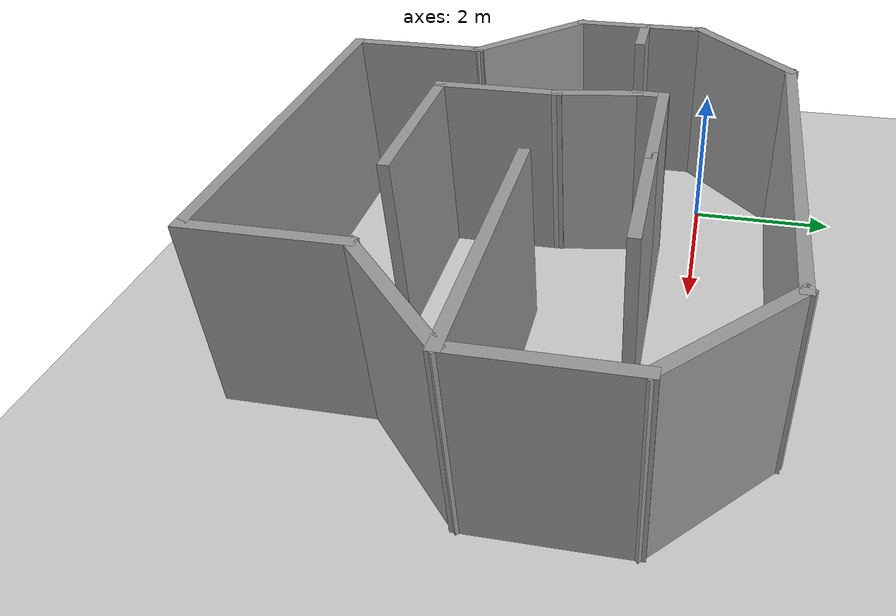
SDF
<sdf version="1.7">
 <world name="default">
  <light name="sun" type="directional">
   <pose>0 0 10 0 -0 0</pose>
   <diffuse>0.8 0.8 0.8 1</diffuse>
   <specular>0.2 0.2 0.2 1</specular>
   <attenuation>
    <range>1000</range>
    <constant>0.9</constant>
    <linear>0.01</linear>
    <quadratic>0.001</quadratic>
   </attenuation>
   <direction>-0.5 0.1 -0.9</direction>
   <spot><inner_angle>0</inner_angle><outer_angle>0</outer_angle><falloff>0</falloff></spot>
  </light>
  <model name="ground_plane">
   <static>1</static>
   <link name="link">
    <collision name="collision">
     <geometry><plane><normal>0 0 1</normal><size>100 100</size></plane></geometry>
     <surface>
      <contact><collide_bitmask>65535</collide_bitmask></contact>
      <friction><ode><mu>100</mu><mu2>50</mu2></ode></friction>
     </surface>
    </collision>
    <visual name="visual">
     <cast_shadows>0</cast_shadows>
     <geometry><plane><normal>0 0 1</normal><size>100 100</size></plane></geometry>
     <material>
      <script><uri>file://media/materials/scripts/gazebo.material</uri><name>Gazebo/Grey</name></script>
     </material>
    </visual>
   </link>
  </model>
  <gravity>0 0 -9.8</gravity>
  <magnetic_field>6e-06 2.3e-05 -4.2e-05</magnetic_field>
  <atmosphere type="adiabatic"/>
  <physics type="ode">
   <max_step_size>0.001</max_step_size>
   <real_time_factor>1</real_time_factor>
   <real_time_update_rate>1000</real_time_update_rate>
  </physics>
  <scene><ambient>0.4 0.4 0.4 1</ambient><background>0.7 0.7 0.7 1</background><shadows>1</shadows></scene>
  <audio><device>default</device></audio>
  <spherical_coordinates>
   <surface_model>EARTH_WGS84</surface_model>
   <latitude_deg>0</latitude_deg>
   <longitude_deg>0</longitude_deg>
   <elevation>0</elevation>
   <heading_deg>0</heading_deg>
  </spherical_coordinates>
  <model name="model">
   <pose>2.38141 -1.67782 0 0 -0 0</pose>
   <link name="Wall_0">
    <collision name="Wall_0_Collision">
     <geometry><box><size>2 0.15 2.5</size></box></geometry>
     <pose>0 0 1.25 0 -0 0</pose>
    </collision>
    <visual name="Wall_0_Visual">
     <pose>0 0 1.25 0 -0 0</pose>
     <geometry><box><size>2 0.15 2.5</size></box></geometry>
     <material>
      <script><uri>file://media/materials/scripts/gazebo.material</uri><name>Gazebo/Grey</name></script>
      <ambient>1 1 1 1</ambient>
     </material>
     <meta><layer>0</layer></meta>
    </visual>
    <pose>-3.73315 0.54706 0 0 -0 -1.5708</pose>
   </link>
   <link name="Wall_1">
    <collision name="Wall_1_Collision">
     <geometry><box><size>2 0.15 2.5</size></box></geometry>
     <pose>0 0 1.25 0 -0 0</pose>
    </collision>
    <visual name="Wall_1_Visual">
     <pose>0 0 1.25 0 -0 0</pose>
     <geometry><box><size>2 0.15 2.5</size></box></geometry>
     <material>
      <script><uri>file://media/materials/scripts/gazebo.material</uri><name>Gazebo/Grey</name></script>
      <ambient>1 1 1 1</ambient>
     </material>
     <meta><layer>0</layer></meta>
    </visual>
    <pose>-3.07907 -1.03201 0 0 -0 -0.785398</pose>
   </link>
   <link name="Wall_14">
    <collision name="Wall_14_Collision">
     <geometry><box><size>0.5 0.15 2.5</size></box></geometry>
     <pose>0 0 1.25 0 -0 0</pose>
    </collision>
    <visual name="Wall_14_Visual">
     <pose>0 0 1.25 0 -0 0</pose>
     <geometry><box><size>0.5 0.15 2.5</size></box></geometry>
     <material>
      <script><uri>file://media/materials/scripts/gazebo.material</uri><name>Gazebo/Grey</name></script>
      <ambient>1 1 1 1</ambient>
     </material>
     <meta><layer>0</layer></meta>
    </visual>
    <pose>-1.38315 0.934061 0 0 -0 1.5708</pose>
   </link>
   <link name="Wall_15">
    <collision name="Wall_15_Collision">
     <geometry><box><size>1.75 0.15 2.5</size></box></geometry>
     <pose>0 0 1.25 0 -0 0</pose>
    </collision>
    <visual name="Wall_15_Visual">
     <pose>0 0 1.25 0 -0 0</pose>
     <geometry><box><size>1.75 0.15 2.5</size></box></geometry>
     <material>
      <script><uri>file://media/materials/scripts/gazebo.material</uri><name>Gazebo/Grey</name></script>
      <ambient>1 1 1 1</ambient>
     </material>
     <meta><layer>0</layer></meta>
    </visual>
    <pose>-0.583147 1.10906 0 0 -0 0</pose>
   </link>
   <link name="Wall_23">
    <collision name="Wall_23_Collision">
     <geometry><box><size>2 0.15 2.5</size></box></geometry>
     <pose>0 0 1.25 0 -0 0</pose>
    </collision>
    <visual name="Wall_23_Visual">
     <pose>0 0 1.25 0 -0 0</pose>
     <geometry><box><size>2 0.15 2.5</size></box></geometry>
     <material>
      <script><uri>file://media/materials/scripts/gazebo.material</uri><name>Gazebo/Grey</name></script>
      <ambient>1 1 1 1</ambient>
     </material>
     <meta><layer>0</layer></meta>
    </visual>
    <pose>-2.425 -2.61109 0 0 -0 -1.5708</pose>
   </link>
   <link name="Wall_24">
    <collision name="Wall_24_Collision">
     <geometry><box><size>5 0.15 2.5</size></box></geometry>
     <pose>0 0 1.25 0 -0 0</pose>
    </collision>
    <visual name="Wall_24_Visual">
     <pose>0 0 1.25 0 -0 0</pose>
     <geometry><box><size>5 0.15 2.5</size></box></geometry>
     <material>
      <script><uri>file://media/materials/scripts/gazebo.material</uri><name>Gazebo/Grey</name></script>
      <ambient>1 1 1 1</ambient>
     </material>
     <meta><layer>0</layer></meta>
    </visual>
    <pose>-0 -3.53609 0 0 -0 0</pose>
   </link>
   <link name="Wall_25">
    <collision name="Wall_25_Collision">
     <geometry><box><size>2 0.15 2.5</size></box></geometry>
     <pose>0 0 1.25 0 -0 0</pose>
    </collision>
    <visual name="Wall_25_Visual">
     <pose>0 0 1.25 0 -0 0</pose>
     <geometry><box><size>2 0.15 2.5</size></box></geometry>
     <material>
      <script><uri>file://media/materials/scripts/gazebo.material</uri><name>Gazebo/Grey</name></script>
      <ambient>1 1 1 1</ambient>
     </material>
     <meta><layer>0</layer></meta>
    </visual>
    <pose>2.425 -2.61109 0 0 -0 1.5708</pose>
   </link>
   <link name="Wall_29">
    <collision name="Wall_29_Collision">
     <geometry><box><size>1.75 0.15 2.5</size></box></geometry>
     <pose>0 0 1.25 0 -0 0</pose>
    </collision>
    <visual name="Wall_29_Visual">
     <pose>0 0 1.25 0 -0 0</pose>
     <geometry><box><size>1.75 0.15 2.5</size></box></geometry>
     <material>
      <script><uri>file://media/materials/scripts/gazebo.material</uri><name>Gazebo/Grey</name></script>
      <ambient>1 1 1 1</ambient>
     </material>
     <meta><layer>0</layer></meta>
    </visual>
    <pose>-1.21221 -1.08869 0 0 -0 -1.5708</pose>
   </link>
   <link name="Wall_3">
    <collision name="Wall_3_Collision">
     <geometry><box><size>2 0.15 2.5</size></box></geometry>
     <pose>0 0 1.25 0 -0 0</pose>
    </collision>
    <visual name="Wall_3_Visual">
     <pose>0 0 1.25 0 -0 0</pose>
     <geometry><box><size>2 0.15 2.5</size></box></geometry>
     <material>
      <script><uri>file://media/materials/scripts/gazebo.material</uri><name>Gazebo/Grey</name></script>
      <ambient>1 1 1 1</ambient>
     </material>
     <meta><layer>0</layer></meta>
    </visual>
    <pose>3.07907 -1.03201 0 0 -0 0.785398</pose>
   </link>
   <link name="Wall_30">
    <collision name="Wall_30_Collision">
     <geometry><box><size>2.25 0.15 2.5</size></box></geometry>
     <pose>0 0 1.25 0 -0 0</pose>
    </collision>
    <visual name="Wall_30_Visual">
     <pose>0 0 1.25 0 -0 0</pose>
     <geometry><box><size>2.25 0.15 2.5</size></box></geometry>
     <material>
      <script><uri>file://media/materials/scripts/gazebo.material</uri><name>Gazebo/Grey</name></script>
      <ambient>1 1 1 1</ambient>
     </material>
     <meta><layer>0</layer></meta>
    </visual>
    <pose>-0.162214 -1.88869 0 0 -0 0</pose>
   </link>
   <link name="Wall_32">
    <collision name="Wall_32_Collision">
     <geometry><box><size>1.2116 0.15 2.5</size></box></geometry>
     <pose>0 0 1.25 0 -0 0</pose>
    </collision>
    <visual name="Wall_32_Visual">
     <pose>0 0 1.25 0 -0 0</pose>
     <geometry><box><size>1.2116 0.15 2.5</size></box></geometry>
     <material>
      <script><uri>file://media/materials/scripts/gazebo.material</uri><name>Gazebo/Grey</name></script>
      <ambient>1 1 1 1</ambient>
     </material>
     <meta><layer>0</layer></meta>
    </visual>
    <pose>-1.29768 0.235187 0 0 -0 -1.40908</pose>
   </link>
   <link name="Wall_34">
    <collision name="Wall_34_Collision">
     <geometry><box><size>1.75 0.15 2.5</size></box></geometry>
     <pose>0 0 1.25 0 -0 0</pose>
    </collision>
    <visual name="Wall_34_Visual">
     <pose>0 0 1.25 0 -0 0</pose>
     <geometry><box><size>1.75 0.15 2.5</size></box></geometry>
     <material>
      <script><uri>file://media/materials/scripts/gazebo.material</uri><name>Gazebo/Grey</name></script>
      <ambient>1 1 1 1</ambient>
     </material>
     <meta><layer>0</layer></meta>
    </visual>
    <pose>1.01685 1.10906 0 0 -0 0</pose>
   </link>
   <link name="Wall_36">
    <collision name="Wall_36_Collision">
     <geometry><box><size>3.5 0.15 2.5</size></box></geometry>
     <pose>0 0 1.25 0 -0 0</pose>
    </collision>
    <visual name="Wall_36_Visual">
     <pose>0 0 1.25 0 -0 0</pose>
     <geometry><box><size>3.5 0.15 2.5</size></box></geometry>
     <material>
      <script><uri>file://media/materials/scripts/gazebo.material</uri><name>Gazebo/Grey</name></script>
      <ambient>1 1 1 1</ambient>
     </material>
     <meta><layer>0</layer></meta>
    </visual>
    <pose>2.05815 -0.377939 0 0 -0 3.14159</pose>
   </link>
   <link name="Wall_39">
    <collision name="Wall_39_Collision">
     <geometry><box><size>0.75 0.15 2.5</size></box></geometry>
     <pose>0 0 1.25 0 -0 0</pose>
    </collision>
    <visual name="Wall_39_Visual">
     <pose>0 0 1.25 0 -0 0</pose>
     <geometry><box><size>0.75 0.15 2.5</size></box></geometry>
     <material>
      <script><uri>file://media/materials/scripts/gazebo.material</uri><name>Gazebo/Grey</name></script>
      <ambient>1 1 1 1</ambient>
     </material>
     <meta><layer>0</layer></meta>
    </visual>
    <pose>-3.37914 0.611458 0 0 -0 0</pose>
   </link>
   <link name="Wall_4">
    <collision name="Wall_4_Collision">
     <geometry><box><size>2 0.15 2.5</size></box></geometry>
     <pose>0 0 1.25 0 -0 0</pose>
    </collision>
    <visual name="Wall_4_Visual">
     <pose>0 0 1.25 0 -0 0</pose>
     <geometry><box><size>2 0.15 2.5</size></box></geometry>
     <material>
      <script><uri>file://media/materials/scripts/gazebo.material</uri><name>Gazebo/Grey</name></script>
      <ambient>1 1 1 1</ambient>
     </material>
     <meta><layer>0</layer></meta>
    </visual>
    <pose>3.73315 0.54706 0 0 -0 1.5708</pose>
   </link>
   <link name="Wall_5">
    <collision name="Wall_5_Collision">
     <geometry><box><size>2 0.15 2.5</size></box></geometry>
     <pose>0 0 1.25 0 -0 0</pose>
    </collision>
    <visual name="Wall_5_Visual">
     <pose>0 0 1.25 0 -0 0</pose>
     <geometry><box><size>2 0.15 2.5</size></box></geometry>
     <material>
      <script><uri>file://media/materials/scripts/gazebo.material</uri><name>Gazebo/Grey</name></script>
      <ambient>1 1 1 1</ambient>
     </material>
     <meta><layer>0</layer></meta>
    </visual>
    <pose>3.07907 2.12613 0 0 -0 2.35619</pose>
   </link>
   <link name="Wall_6">
    <collision name="Wall_6_Collision">
     <geometry><box><size>5 0.15 2.5</size></box></geometry>
     <pose>0 0 1.25 0 -0 0</pose>
    </collision>
    <visual name="Wall_6_Visual">
     <pose>0 0 1.25 0 -0 0</pose>
     <geometry><box><size>5 0.15 2.5</size></box></geometry>
     <material>
      <script><uri>file://media/materials/scripts/gazebo.material</uri><name>Gazebo/Grey</name></script>
      <ambient>1 1 1 1</ambient>
     </material>
     <meta><layer>0</layer></meta>
    </visual>
    <pose>-0 2.78021 0 0 -0 3.14159</pose>
   </link>
   <link name="Wall_9">
    <collision name="Wall_9_Collision">
     <geometry><box><size>2 0.15 2.5</size></box></geometry>
     <pose>0 0 1.25 0 -0 0</pose>
    </collision>
    <visual name="Wall_9_Visual">
     <pose>0 0 1.25 0 -0 0</pose>
     <geometry><box><size>2 0.15 2.5</size></box></geometry>
     <material>
      <script><uri>file://media/materials/scripts/gazebo.material</uri><name>Gazebo/Grey</name></script>
      <ambient>1 1 1 1</ambient>
     </material>
     <meta><layer>0</layer></meta>
    </visual>
    <pose>-3.07907 2.12613 0 0 -0 -2.35619</pose>
   </link>
   <static>1</static>
  </model>
 </world>
</sdf>
